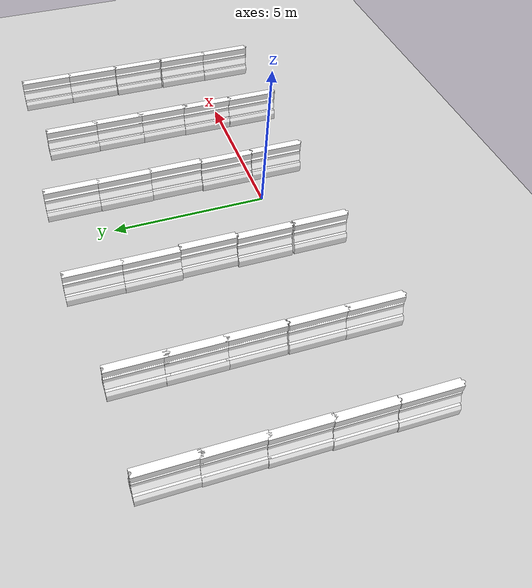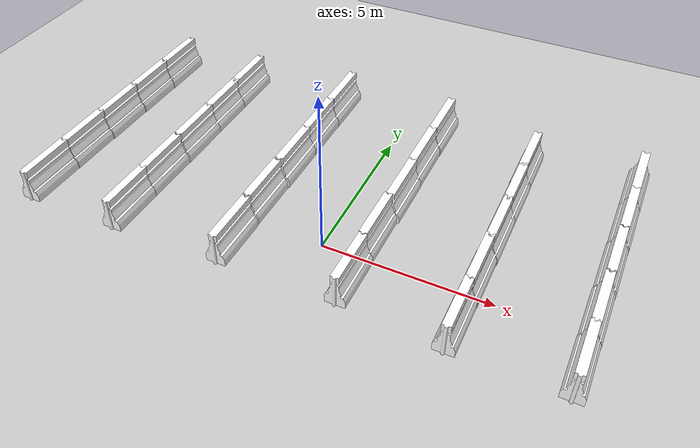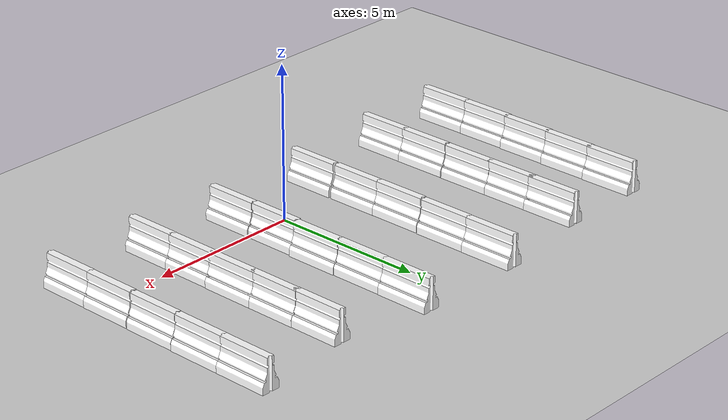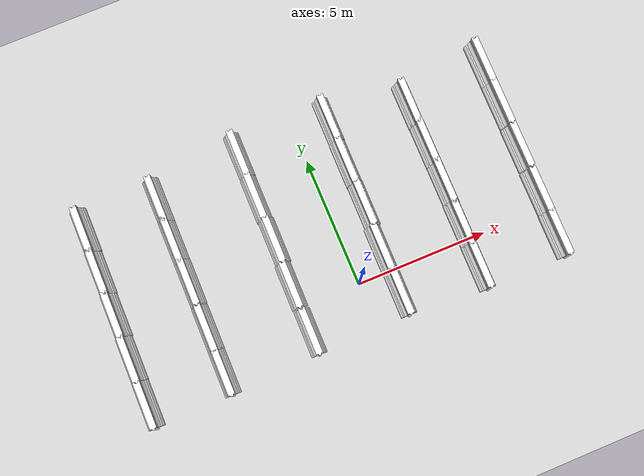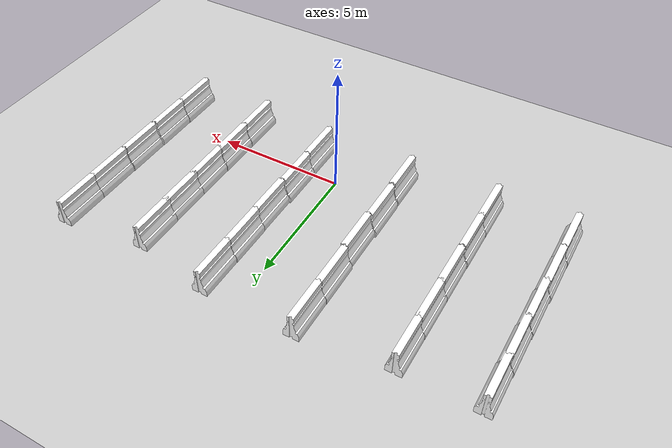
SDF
<sdf version="1.7">
 <world name="default">
  <spherical_coordinates>
   <surface_model>EARTH_WGS84</surface_model>
   <latitude_deg>38.161479</latitude_deg>
   <longitude_deg>-122.454630</longitude_deg>
   <elevation>488.0</elevation>
   <heading_deg>180</heading_deg>
  </spherical_coordinates>
  <light name="sun" type="directional">
   <pose>0 0 10 0 -0 0</pose>
   <diffuse>0.8 0.8 0.8 1</diffuse>
   <specular>0.2 0.2 0.2 1</specular>
   <attenuation>
    <range>1000</range>
    <constant>0.9</constant>
    <linear>0.01</linear>
    <quadratic>0.001</quadratic>
   </attenuation>
   <direction>-0.5 0.1 -0.9</direction>
   <spot><inner_angle>0</inner_angle><outer_angle>0</outer_angle><falloff>0</falloff></spot>
  </light>
  <model name="ground_plane">
   <static>1</static>
   <link name="link">
    <collision name="collision">
     <geometry><plane><normal>0 0 1</normal><size>100 100</size></plane></geometry>
     <surface><friction><ode><mu>100</mu><mu2>50</mu2></ode></friction></surface>
    </collision>
    <visual name="visual">
     <cast_shadows>0</cast_shadows>
     <geometry><plane><normal>0 0 1</normal><size>100 100</size></plane></geometry>
     <material>
      <script><uri>file://media/materials/scripts/gazebo.material</uri><name>Gazebo/Grey</name></script>
     </material>
    </visual>
   </link>
  </model>
  <gravity>0 0 -9.8</gravity>
  <magnetic_field>6e-06 2.3e-05 -4.2e-05</magnetic_field>
  <atmosphere type="adiabatic"/>
  <physics type="ode">
   <max_step_size>0.001</max_step_size>
   <real_time_factor>1</real_time_factor>
   <real_time_update_rate>1000</real_time_update_rate>
  </physics>
  <scene><ambient>0.4 0.4 0.4 1</ambient><background>0.7 0.7 0.7 1</background><shadows>1</shadows></scene>
  <audio><device>default</device></audio>
  <spherical_coordinates>
   <surface_model>EARTH_WGS84</surface_model>
   <latitude_deg>0</latitude_deg>
   <longitude_deg>0</longitude_deg>
   <elevation>0</elevation>
   <heading_deg>0</heading_deg>
  </spherical_coordinates>
  <model name="drc_practice_white_jersey_barrier">
   <static>1</static>
   <link name="link">
    <visual name="visual">
     <geometry>
      <mesh><uri>model://drc_practice_white_jersey_barrier/meshes/jersey_barrier.dae</uri></mesh>
     </geometry>
    </visual>
    <collision name="collision">
     <geometry>
      <mesh><uri>model://drc_practice_white_jersey_barrier/meshes/jersey_barrier.dae</uri></mesh>
     </geometry>
    </collision>
   </link>
   <pose>-2.31285 0.865161 0 0 -0 0</pose>
  </model>
  <model name="drc_practice_white_jersey_barrier_clone">
   <static>1</static>
   <link name="link">
    <visual name="visual">
     <geometry>
      <mesh><uri>model://drc_practice_white_jersey_barrier/meshes/jersey_barrier.dae</uri></mesh>
     </geometry>
    </visual>
    <collision name="collision">
     <geometry>
      <mesh><uri>model://drc_practice_white_jersey_barrier/meshes/jersey_barrier.dae</uri></mesh>
     </geometry>
    </collision>
   </link>
   <pose>-2.25935 2.61258 0.035484 0 -0 0</pose>
  </model>
  <model name="drc_practice_white_jersey_barrier_clone_clone">
   <static>1</static>
   <link name="link">
    <visual name="visual">
     <geometry>
      <mesh><uri>model://drc_practice_white_jersey_barrier/meshes/jersey_barrier.dae</uri></mesh>
     </geometry>
    </visual>
    <collision name="collision">
     <geometry>
      <mesh><uri>model://drc_practice_white_jersey_barrier/meshes/jersey_barrier.dae</uri></mesh>
     </geometry>
    </collision>
   </link>
   <pose>-2.2827 4.34486 0 0 -0 0</pose>
  </model>
  <model name="drc_practice_white_jersey_barrier_clone_clone_0">
   <static>1</static>
   <link name="link">
    <visual name="visual">
     <geometry>
      <mesh><uri>model://drc_practice_white_jersey_barrier/meshes/jersey_barrier.dae</uri></mesh>
     </geometry>
    </visual>
    <collision name="collision">
     <geometry>
      <mesh><uri>model://drc_practice_white_jersey_barrier/meshes/jersey_barrier.dae</uri></mesh>
     </geometry>
    </collision>
   </link>
   <pose>-2.26451 6.07905 0 0 -0 0</pose>
  </model>
  <model name="drc_practice_white_jersey_barrier_clone_clone_1">
   <static>1</static>
   <link name="link">
    <visual name="visual">
     <geometry>
      <mesh><uri>model://drc_practice_white_jersey_barrier/meshes/jersey_barrier.dae</uri></mesh>
     </geometry>
    </visual>
    <collision name="collision">
     <geometry>
      <mesh><uri>model://drc_practice_white_jersey_barrier/meshes/jersey_barrier.dae</uri></mesh>
     </geometry>
    </collision>
   </link>
   <pose>-2.30543 -0.940519 0 0 -0 0</pose>
  </model>
  <model name="drc_practice_white_jersey_barrier_clone_clone_2">
   <static>1</static>
   <link name="link">
    <visual name="visual">
     <geometry>
      <mesh><uri>model://drc_practice_white_jersey_barrier/meshes/jersey_barrier.dae</uri></mesh>
     </geometry>
    </visual>
    <collision name="collision">
     <geometry>
      <mesh><uri>model://drc_practice_white_jersey_barrier/meshes/jersey_barrier.dae</uri></mesh>
     </geometry>
    </collision>
   </link>
   <pose>1.23085 0.885445 0 0 -0 0</pose>
  </model>
  <model name="drc_practice_white_jersey_barrier_clone_clone_3">
   <static>1</static>
   <link name="link">
    <visual name="visual">
     <geometry>
      <mesh><uri>model://drc_practice_white_jersey_barrier/meshes/jersey_barrier.dae</uri></mesh>
     </geometry>
    </visual>
    <collision name="collision">
     <geometry>
      <mesh><uri>model://drc_practice_white_jersey_barrier/meshes/jersey_barrier.dae</uri></mesh>
     </geometry>
    </collision>
   </link>
   <pose>1.29134 2.61106 0 0 -0 0</pose>
  </model>
  <model name="drc_practice_white_jersey_barrier_clone_clone_4">
   <static>1</static>
   <link name="link">
    <visual name="visual">
     <geometry>
      <mesh><uri>model://drc_practice_white_jersey_barrier/meshes/jersey_barrier.dae</uri></mesh>
     </geometry>
    </visual>
    <collision name="collision">
     <geometry>
      <mesh><uri>model://drc_practice_white_jersey_barrier/meshes/jersey_barrier.dae</uri></mesh>
     </geometry>
    </collision>
   </link>
   <pose>1.28411 4.31775 0 0 -0 0</pose>
  </model>
  <model name="drc_practice_white_jersey_barrier_clone_clone_5">
   <static>1</static>
   <link name="link">
    <visual name="visual">
     <geometry>
      <mesh><uri>model://drc_practice_white_jersey_barrier/meshes/jersey_barrier.dae</uri></mesh>
     </geometry>
    </visual>
    <collision name="collision">
     <geometry>
      <mesh><uri>model://drc_practice_white_jersey_barrier/meshes/jersey_barrier.dae</uri></mesh>
     </geometry>
    </collision>
   </link>
   <pose>1.30418 6.05205 0 0 -0 0</pose>
  </model>
  <model name="drc_practice_white_jersey_barrier_clone_clone_6">
   <static>1</static>
   <link name="link">
    <visual name="visual">
     <geometry>
      <mesh><uri>model://drc_practice_white_jersey_barrier/meshes/jersey_barrier.dae</uri></mesh>
     </geometry>
    </visual>
    <collision name="collision">
     <geometry>
      <mesh><uri>model://drc_practice_white_jersey_barrier/meshes/jersey_barrier.dae</uri></mesh>
     </geometry>
    </collision>
   </link>
   <pose>1.23925 -0.870586 0 0 -0 0</pose>
  </model>
  <model name="drc_practice_white_jersey_barrier_clone_clone_6_clone">
   <static>1</static>
   <link name="link">
    <visual name="visual">
     <geometry>
      <mesh><uri>model://drc_practice_white_jersey_barrier/meshes/jersey_barrier.dae</uri></mesh>
     </geometry>
    </visual>
    <collision name="collision">
     <geometry>
      <mesh><uri>model://drc_practice_white_jersey_barrier/meshes/jersey_barrier.dae</uri></mesh>
     </geometry>
    </collision>
   </link>
   <pose>4.25751 -1.09658 0 0 -0 0</pose>
  </model>
  <model name="drc_practice_white_jersey_barrier_clone_clone_6_clone_0">
   <static>1</static>
   <link name="link">
    <visual name="visual">
     <geometry>
      <mesh><uri>model://drc_practice_white_jersey_barrier/meshes/jersey_barrier.dae</uri></mesh>
     </geometry>
    </visual>
    <collision name="collision">
     <geometry>
      <mesh><uri>model://drc_practice_white_jersey_barrier/meshes/jersey_barrier.dae</uri></mesh>
     </geometry>
    </collision>
   </link>
   <pose>4.27538 0.590977 0 0 -0 0</pose>
  </model>
  <model name="drc_practice_white_jersey_barrier_clone_clone_6_clone_1">
   <static>1</static>
   <link name="link">
    <visual name="visual">
     <geometry>
      <mesh><uri>model://drc_practice_white_jersey_barrier/meshes/jersey_barrier.dae</uri></mesh>
     </geometry>
    </visual>
    <collision name="collision">
     <geometry>
      <mesh><uri>model://drc_practice_white_jersey_barrier/meshes/jersey_barrier.dae</uri></mesh>
     </geometry>
    </collision>
   </link>
   <pose>4.30112 2.23311 0 0 -0 0</pose>
  </model>
  <model name="drc_practice_white_jersey_barrier_clone_clone_6_clone_2">
   <static>1</static>
   <link name="link">
    <visual name="visual">
     <geometry>
      <mesh><uri>model://drc_practice_white_jersey_barrier/meshes/jersey_barrier.dae</uri></mesh>
     </geometry>
    </visual>
    <collision name="collision">
     <geometry>
      <mesh><uri>model://drc_practice_white_jersey_barrier/meshes/jersey_barrier.dae</uri></mesh>
     </geometry>
    </collision>
   </link>
   <pose>4.30581 3.85848 0 0 -0 0</pose>
  </model>
  <model name="drc_practice_white_jersey_barrier_clone_clone_6_clone_3">
   <static>1</static>
   <link name="link">
    <visual name="visual">
     <geometry>
      <mesh><uri>model://drc_practice_white_jersey_barrier/meshes/jersey_barrier.dae</uri></mesh>
     </geometry>
    </visual>
    <collision name="collision">
     <geometry>
      <mesh><uri>model://drc_practice_white_jersey_barrier/meshes/jersey_barrier.dae</uri></mesh>
     </geometry>
    </collision>
   </link>
   <pose>4.29986 5.48081 0 0 -0 0</pose>
  </model>
  <model name="drc_practice_white_jersey_barrier_clone_clone_6_clone_4">
   <static>1</static>
   <link name="link">
    <visual name="visual">
     <geometry>
      <mesh><uri>model://drc_practice_white_jersey_barrier/meshes/jersey_barrier.dae</uri></mesh>
     </geometry>
    </visual>
    <collision name="collision">
     <geometry>
      <mesh><uri>model://drc_practice_white_jersey_barrier/meshes/jersey_barrier.dae</uri></mesh>
     </geometry>
    </collision>
   </link>
   <pose>7.3645 -1.096 0 0 -0 0</pose>
  </model>
  <model name="drc_practice_white_jersey_barrier_clone_clone_6_clone_5">
   <static>1</static>
   <link name="link">
    <visual name="visual">
     <geometry>
      <mesh><uri>model://drc_practice_white_jersey_barrier/meshes/jersey_barrier.dae</uri></mesh>
     </geometry>
    </visual>
    <collision name="collision">
     <geometry>
      <mesh><uri>model://drc_practice_white_jersey_barrier/meshes/jersey_barrier.dae</uri></mesh>
     </geometry>
    </collision>
   </link>
   <pose>7.38503 0.595216 0 0 -0 0</pose>
  </model>
  <model name="drc_practice_white_jersey_barrier_clone_clone_6_clone_6">
   <static>1</static>
   <link name="link">
    <visual name="visual">
     <geometry>
      <mesh><uri>model://drc_practice_white_jersey_barrier/meshes/jersey_barrier.dae</uri></mesh>
     </geometry>
    </visual>
    <collision name="collision">
     <geometry>
      <mesh><uri>model://drc_practice_white_jersey_barrier/meshes/jersey_barrier.dae</uri></mesh>
     </geometry>
    </collision>
   </link>
   <pose>7.41126 2.38238 0 0 -0 0</pose>
  </model>
  <model name="drc_practice_white_jersey_barrier_clone_clone_6_clone_7">
   <static>1</static>
   <link name="link">
    <visual name="visual">
     <geometry>
      <mesh><uri>model://drc_practice_white_jersey_barrier/meshes/jersey_barrier.dae</uri></mesh>
     </geometry>
    </visual>
    <collision name="collision">
     <geometry>
      <mesh><uri>model://drc_practice_white_jersey_barrier/meshes/jersey_barrier.dae</uri></mesh>
     </geometry>
    </collision>
   </link>
   <pose>7.43491 4.1441 0 0 -0 0</pose>
  </model>
  <model name="drc_practice_white_jersey_barrier_clone_clone_6_clone_8">
   <static>1</static>
   <link name="link">
    <visual name="visual">
     <geometry>
      <mesh><uri>model://drc_practice_white_jersey_barrier/meshes/jersey_barrier.dae</uri></mesh>
     </geometry>
    </visual>
    <collision name="collision">
     <geometry>
      <mesh><uri>model://drc_practice_white_jersey_barrier/meshes/jersey_barrier.dae</uri></mesh>
     </geometry>
    </collision>
   </link>
   <pose>7.44643 5.87903 0 0 -0 0</pose>
  </model>
  <model name="drc_practice_white_jersey_barrier_clone_clone_6_clone_9">
   <static>1</static>
   <link name="link">
    <visual name="visual">
     <geometry>
      <mesh><uri>model://drc_practice_white_jersey_barrier/meshes/jersey_barrier.dae</uri></mesh>
     </geometry>
    </visual>
    <collision name="collision">
     <geometry>
      <mesh><uri>model://drc_practice_white_jersey_barrier/meshes/jersey_barrier.dae</uri></mesh>
     </geometry>
    </collision>
   </link>
   <pose>-5.69564 -1.07834 0 0 -0 0</pose>
  </model>
  <model name="drc_practice_white_jersey_barrier_clone_clone_6_clone_10">
   <static>1</static>
   <link name="link">
    <visual name="visual">
     <geometry>
      <mesh><uri>model://drc_practice_white_jersey_barrier/meshes/jersey_barrier.dae</uri></mesh>
     </geometry>
    </visual>
    <collision name="collision">
     <geometry>
      <mesh><uri>model://drc_practice_white_jersey_barrier/meshes/jersey_barrier.dae</uri></mesh>
     </geometry>
    </collision>
   </link>
   <pose>-5.68357 0.600841 0 0 -0 0</pose>
  </model>
  <model name="drc_practice_white_jersey_barrier_clone_clone_6_clone_11">
   <static>1</static>
   <link name="link">
    <visual name="visual">
     <geometry>
      <mesh><uri>model://drc_practice_white_jersey_barrier/meshes/jersey_barrier.dae</uri></mesh>
     </geometry>
    </visual>
    <collision name="collision">
     <geometry>
      <mesh><uri>model://drc_practice_white_jersey_barrier/meshes/jersey_barrier.dae</uri></mesh>
     </geometry>
    </collision>
   </link>
   <pose>-5.66235 2.37335 0 0 -0 0</pose>
  </model>
  <model name="drc_practice_white_jersey_barrier_clone_clone_6_clone_12">
   <static>1</static>
   <link name="link">
    <visual name="visual">
     <geometry>
      <mesh><uri>model://drc_practice_white_jersey_barrier/meshes/jersey_barrier.dae</uri></mesh>
     </geometry>
    </visual>
    <collision name="collision">
     <geometry>
      <mesh><uri>model://drc_practice_white_jersey_barrier/meshes/jersey_barrier.dae</uri></mesh>
     </geometry>
    </collision>
   </link>
   <pose>-5.65778 4.03693 0 0 -0 0</pose>
  </model>
  <model name="drc_practice_white_jersey_barrier_clone_clone_6_clone_13">
   <static>1</static>
   <link name="link">
    <visual name="visual">
     <geometry>
      <mesh><uri>model://drc_practice_white_jersey_barrier/meshes/jersey_barrier.dae</uri></mesh>
     </geometry>
    </visual>
    <collision name="collision">
     <geometry>
      <mesh><uri>model://drc_practice_white_jersey_barrier/meshes/jersey_barrier.dae</uri></mesh>
     </geometry>
    </collision>
   </link>
   <pose>-5.64524 5.64176 0 0 -0 0</pose>
  </model>
  <model name="drc_practice_white_jersey_barrier_clone_clone_6_clone_14">
   <static>1</static>
   <link name="link">
    <visual name="visual">
     <geometry>
      <mesh><uri>model://drc_practice_white_jersey_barrier/meshes/jersey_barrier.dae</uri></mesh>
     </geometry>
    </visual>
    <collision name="collision">
     <geometry>
      <mesh><uri>model://drc_practice_white_jersey_barrier/meshes/jersey_barrier.dae</uri></mesh>
     </geometry>
    </collision>
   </link>
   <pose>-8.63834 -1.11126 0 0 -0 0</pose>
  </model>
  <model name="drc_practice_white_jersey_barrier_clone_clone_6_clone_15">
   <static>1</static>
   <link name="link">
    <visual name="visual">
     <geometry>
      <mesh><uri>model://drc_practice_white_jersey_barrier/meshes/jersey_barrier.dae</uri></mesh>
     </geometry>
    </visual>
    <collision name="collision">
     <geometry>
      <mesh><uri>model://drc_practice_white_jersey_barrier/meshes/jersey_barrier.dae</uri></mesh>
     </geometry>
    </collision>
   </link>
   <pose>-8.61894 0.634928 0 0 -0 0</pose>
  </model>
  <model name="drc_practice_white_jersey_barrier_clone_clone_6_clone_16">
   <static>1</static>
   <link name="link">
    <visual name="visual">
     <geometry>
      <mesh><uri>model://drc_practice_white_jersey_barrier/meshes/jersey_barrier.dae</uri></mesh>
     </geometry>
    </visual>
    <collision name="collision">
     <geometry>
      <mesh><uri>model://drc_practice_white_jersey_barrier/meshes/jersey_barrier.dae</uri></mesh>
     </geometry>
    </collision>
   </link>
   <pose>-8.58187 2.3102 0 0 -0 0</pose>
  </model>
  <model name="drc_practice_white_jersey_barrier_clone_clone_6_clone_17">
   <static>1</static>
   <link name="link">
    <visual name="visual">
     <geometry>
      <mesh><uri>model://drc_practice_white_jersey_barrier/meshes/jersey_barrier.dae</uri></mesh>
     </geometry>
    </visual>
    <collision name="collision">
     <geometry>
      <mesh><uri>model://drc_practice_white_jersey_barrier/meshes/jersey_barrier.dae</uri></mesh>
     </geometry>
    </collision>
   </link>
   <pose>-8.55089 3.97027 0 0 -0 0</pose>
  </model>
  <model name="drc_practice_white_jersey_barrier_clone_clone_6_clone_18">
   <static>1</static>
   <link name="link">
    <visual name="visual">
     <geometry>
      <mesh><uri>model://drc_practice_white_jersey_barrier/meshes/jersey_barrier.dae</uri></mesh>
     </geometry>
    </visual>
    <collision name="collision">
     <geometry>
      <mesh><uri>model://drc_practice_white_jersey_barrier/meshes/jersey_barrier.dae</uri></mesh>
     </geometry>
    </collision>
   </link>
   <pose>-8.5237 5.61418 0 0 -0 0</pose>
  </model>
 </world>
</sdf>
